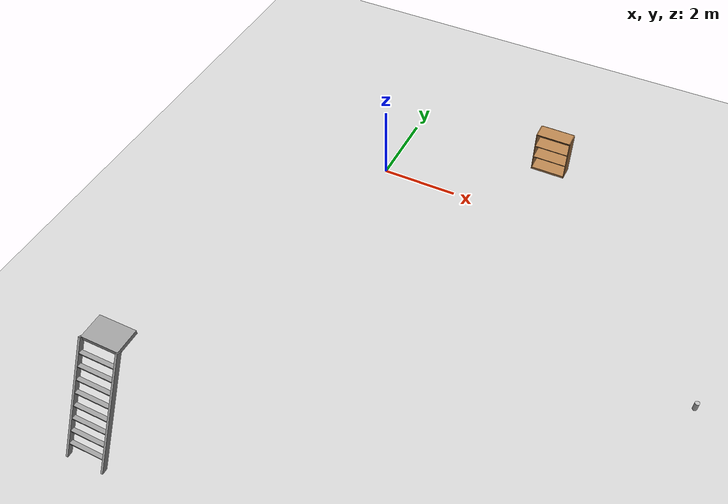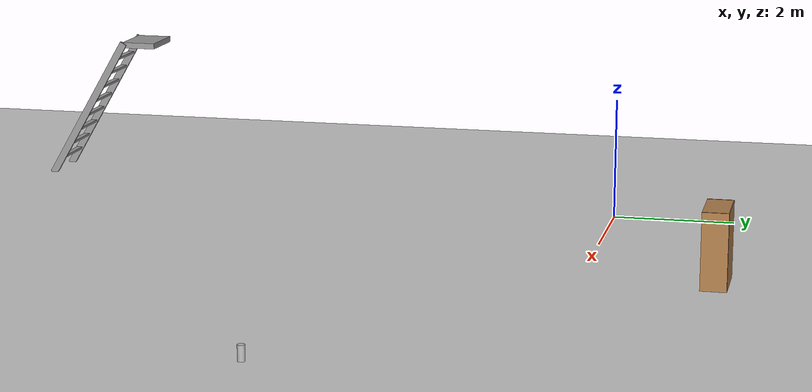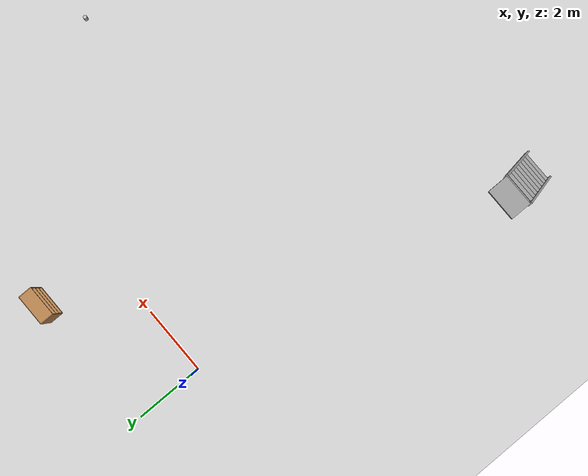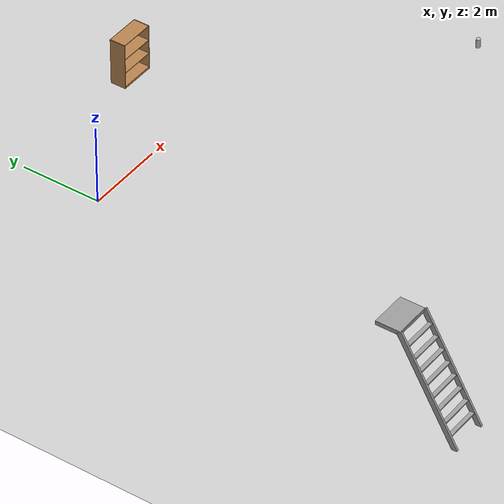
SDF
<sdf version="1.6">
 <world name="default">
  <light name="sun" type="directional">
   <pose>0 0 10 0 -0 0</pose>
   <diffuse>0.8 0.8 0.8 1</diffuse>
   <specular>0.1 0.1 0.1 1</specular>
   <attenuation>
    <range>1000</range>
    <constant>0.9</constant>
    <linear>0.01</linear>
    <quadratic>0.001</quadratic>
   </attenuation>
   <direction>-0.5 0.5 -1</direction>
  </light>
  <model name="ground_plane">
   <static>1</static>
   <link name="link">
    <collision name="collision">
     <geometry><plane><normal>0 0 1</normal><size>100 100</size></plane></geometry>
     <surface><friction><ode><mu>100</mu><mu2>50</mu2></ode></friction></surface>
    </collision>
    <visual name="visual">
     <cast_shadows>0</cast_shadows>
     <geometry><plane><normal>0 0 1</normal><size>100 100</size></plane></geometry>
     <material>
      <script><uri>file://media/materials/scripts/gazebo.material</uri><name>Gazebo/Grey</name></script>
     </material>
    </visual>
   </link>
  </model>
  <gravity>0 0 -9.8</gravity>
  <magnetic_field>6e-06 2.3e-05 -4.2e-05</magnetic_field>
  <atmosphere type="adiabatic"/>
  <physics name="default_physics" default="0" type="ode">
   <max_step_size>0.001</max_step_size>
   <real_time_factor>1</real_time_factor>
   <real_time_update_rate>1000</real_time_update_rate>
  </physics>
  <scene><ambient>0.4 0.4 0.4 1</ambient><background>0.7 0.7 0.7 1</background><shadows>1</shadows></scene>
  <spherical_coordinates>
   <surface_model>EARTH_WGS84</surface_model>
   <latitude_deg>0</latitude_deg>
   <longitude_deg>0</longitude_deg>
   <elevation>0</elevation>
   <heading_deg>0</heading_deg>
  </spherical_coordinates>
  <model name="beer">
   <link name="link">
    <pose>0 0 0.115 0 -0 0</pose>
    <inertial>
     <mass>0.39</mass>
     <inertia><ixx>0.00058</ixx><ixy>0</ixy><ixz>0</ixz><iyy>0.00058</iyy><iyz>0</iyz><izz>0.00019</izz></inertia>
    </inertial>
    <collision name="collision">
     <geometry><cylinder><radius>0.055</radius><length>0.23</length></cylinder></geometry>
    </collision>
    <visual name="visual">
     <geometry><cylinder><radius>0.055</radius><length>0.23</length></cylinder></geometry>
     <material>
      <script>
       <uri>model://beer/materials/scripts</uri>
       <uri>model://beer/materials/textures</uri>
       <name>Beer/Diffuse</name>
      </script>
     </material>
    </visual>
   </link>
   <pose>9.30764 -3.74402 -2e-06 0 0 -2.2e-05</pose>
  </model>
  <model name="bookshelf">
   <static>1</static>
   <link name="link">
    <inertial><mass>1</mass></inertial>
    <collision name="back">
     <pose>0 0.005 0.6 0 -0 0</pose>
     <geometry><box><size>0.9 0.01 1.2</size></box></geometry>
    </collision>
    <visual name="visual1">
     <pose>0 0.005 0.6 0 -0 0</pose>
     <geometry><box><size>0.9 0.01 1.2</size></box></geometry>
     <material>
      <script><uri>file://media/materials/scripts/gazebo.material</uri><name>Gazebo/Wood</name></script>
     </material>
    </visual>
    <collision name="left_side">
     <pose>0.45 -0.195 0.6 0 -0 0</pose>
     <geometry><box><size>0.02 0.4 1.2</size></box></geometry>
    </collision>
    <visual name="visual2">
     <pose>0.45 -0.195 0.6 0 -0 0</pose>
     <geometry><box><size>0.02 0.4 1.2</size></box></geometry>
     <material>
      <script><uri>file://media/materials/scripts/gazebo.material</uri><name>Gazebo/Wood</name></script>
     </material>
    </visual>
    <collision name="right_side">
     <pose>-0.45 -0.195 0.6 0 -0 0</pose>
     <geometry><box><size>0.02 0.4 1.2</size></box></geometry>
    </collision>
    <visual name="visual3">
     <pose>-0.45 -0.195 0.6 0 -0 0</pose>
     <geometry><box><size>0.02 0.4 1.2</size></box></geometry>
     <material>
      <script><uri>file://media/materials/scripts/gazebo.material</uri><name>Gazebo/Wood</name></script>
     </material>
    </visual>
    <collision name="bottom">
     <pose>0 -0.195 0.03 0 -0 0</pose>
     <geometry><box><size>0.88 0.4 0.06</size></box></geometry>
    </collision>
    <visual name="visual4">
     <pose>0 -0.195 0.03 0 -0 0</pose>
     <geometry><box><size>0.88 0.4 0.06</size></box></geometry>
     <material>
      <script><uri>file://media/materials/scripts/gazebo.material</uri><name>Gazebo/Wood</name></script>
     </material>
    </visual>
    <collision name="top">
     <pose>0 -0.195 1.19 0 -0 0</pose>
     <geometry><box><size>0.88 0.4 0.02</size></box></geometry>
    </collision>
    <visual name="visual5">
     <pose>0 -0.195 1.19 0 -0 0</pose>
     <geometry><box><size>0.88 0.4 0.02</size></box></geometry>
     <material>
      <script><uri>file://media/materials/scripts/gazebo.material</uri><name>Gazebo/Wood</name></script>
     </material>
    </visual>
    <collision name="low_shelf">
     <pose>0 -0.195 0.43 0 -0 0</pose>
     <geometry><box><size>0.88 0.4 0.02</size></box></geometry>
    </collision>
    <visual name="visual6">
     <pose>0 -0.195 0.43 0 -0 0</pose>
     <geometry><box><size>0.88 0.4 0.02</size></box></geometry>
     <material>
      <script><uri>file://media/materials/scripts/gazebo.material</uri><name>Gazebo/Wood</name></script>
     </material>
    </visual>
    <collision name="high_shelf">
     <pose>0 -0.195 0.8 0 -0 0</pose>
     <geometry><box><size>0.88 0.4 0.02</size></box></geometry>
    </collision>
    <visual name="visual7">
     <pose>0 -0.195 0.8 0 -0 0</pose>
     <geometry><box><size>0.88 0.4 0.02</size></box></geometry>
     <material>
      <script><uri>file://media/materials/scripts/gazebo.material</uri><name>Gazebo/Wood</name></script>
     </material>
    </visual>
   </link>
   <pose>3.95799 2.23653 0 0 -0 0</pose>
  </model>
  <model name="ladder_60deg_0rails">
   <static>1</static>
   <link name="step0">
    <pose>0 0.15396 0.266667 0 -0 0</pose>
    <inertial>
     <mass>9.75482</mass>
     <inertia>
      <ixx>0.00957124</ixx>
      <iyy>0.65963</iyy>
      <izz>0.666842</izz>
      <ixy>0</ixy>
      <ixz>0</ixz>
      <iyz>0</iyz>
     </inertia>
    </inertial>
    <collision name="collision"><geometry><box><size>0.9 0.1016 0.0381</size></box></geometry></collision>
    <visual name="visual">
     <geometry><box><size>0.9 0.1016 0.0381</size></box></geometry>
     <material>
      <script><uri>file://media/materials/scripts/gazebo.material</uri><name>Gazebo/Grey</name></script>
     </material>
    </visual>
   </link>
   <link name="step1">
    <pose>0 0.30792 0.533333 0 -0 0</pose>
    <inertial>
     <mass>9.75482</mass>
     <inertia>
      <ixx>0.00957124</ixx>
      <iyy>0.65963</iyy>
      <izz>0.666842</izz>
      <ixy>0</ixy>
      <ixz>0</ixz>
      <iyz>0</iyz>
     </inertia>
    </inertial>
    <collision name="collision"><geometry><box><size>0.9 0.1016 0.0381</size></box></geometry></collision>
    <visual name="visual">
     <geometry><box><size>0.9 0.1016 0.0381</size></box></geometry>
     <material>
      <script><uri>file://media/materials/scripts/gazebo.material</uri><name>Gazebo/Grey</name></script>
     </material>
    </visual>
   </link>
   <link name="step2">
    <pose>0 0.46188 0.8 0 -0 0</pose>
    <inertial>
     <mass>9.75482</mass>
     <inertia>
      <ixx>0.00957124</ixx>
      <iyy>0.65963</iyy>
      <izz>0.666842</izz>
      <ixy>0</ixy>
      <ixz>0</ixz>
      <iyz>0</iyz>
     </inertia>
    </inertial>
    <collision name="collision"><geometry><box><size>0.9 0.1016 0.0381</size></box></geometry></collision>
    <visual name="visual">
     <geometry><box><size>0.9 0.1016 0.0381</size></box></geometry>
     <material>
      <script><uri>file://media/materials/scripts/gazebo.material</uri><name>Gazebo/Grey</name></script>
     </material>
    </visual>
   </link>
   <link name="step3">
    <pose>0 0.61584 1.06667 0 -0 0</pose>
    <inertial>
     <mass>9.75482</mass>
     <inertia>
      <ixx>0.00957124</ixx>
      <iyy>0.65963</iyy>
      <izz>0.666842</izz>
      <ixy>0</ixy>
      <ixz>0</ixz>
      <iyz>0</iyz>
     </inertia>
    </inertial>
    <collision name="collision"><geometry><box><size>0.9 0.1016 0.0381</size></box></geometry></collision>
    <visual name="visual">
     <geometry><box><size>0.9 0.1016 0.0381</size></box></geometry>
     <material>
      <script><uri>file://media/materials/scripts/gazebo.material</uri><name>Gazebo/Grey</name></script>
     </material>
    </visual>
   </link>
   <link name="step4">
    <pose>0 0.7698 1.33333 0 -0 0</pose>
    <inertial>
     <mass>9.75482</mass>
     <inertia>
      <ixx>0.00957124</ixx>
      <iyy>0.65963</iyy>
      <izz>0.666842</izz>
      <ixy>0</ixy>
      <ixz>0</ixz>
      <iyz>0</iyz>
     </inertia>
    </inertial>
    <collision name="collision"><geometry><box><size>0.9 0.1016 0.0381</size></box></geometry></collision>
    <visual name="visual">
     <geometry><box><size>0.9 0.1016 0.0381</size></box></geometry>
     <material>
      <script><uri>file://media/materials/scripts/gazebo.material</uri><name>Gazebo/Grey</name></script>
     </material>
    </visual>
   </link>
   <link name="step5">
    <pose>0 0.92376 1.6 0 -0 0</pose>
    <inertial>
     <mass>9.75482</mass>
     <inertia>
      <ixx>0.00957124</ixx>
      <iyy>0.65963</iyy>
      <izz>0.666842</izz>
      <ixy>0</ixy>
      <ixz>0</ixz>
      <iyz>0</iyz>
     </inertia>
    </inertial>
    <collision name="collision"><geometry><box><size>0.9 0.1016 0.0381</size></box></geometry></collision>
    <visual name="visual">
     <geometry><box><size>0.9 0.1016 0.0381</size></box></geometry>
     <material>
      <script><uri>file://media/materials/scripts/gazebo.material</uri><name>Gazebo/Grey</name></script>
     </material>
    </visual>
   </link>
   <link name="step6">
    <pose>0 1.07772 1.86667 0 -0 0</pose>
    <inertial>
     <mass>9.75482</mass>
     <inertia>
      <ixx>0.00957124</ixx>
      <iyy>0.65963</iyy>
      <izz>0.666842</izz>
      <ixy>0</ixy>
      <ixz>0</ixz>
      <iyz>0</iyz>
     </inertia>
    </inertial>
    <collision name="collision"><geometry><box><size>0.9 0.1016 0.0381</size></box></geometry></collision>
    <visual name="visual">
     <geometry><box><size>0.9 0.1016 0.0381</size></box></geometry>
     <material>
      <script><uri>file://media/materials/scripts/gazebo.material</uri><name>Gazebo/Grey</name></script>
     </material>
    </visual>
   </link>
   <link name="step7">
    <pose>0 1.23168 2.13333 0 -0 0</pose>
    <inertial>
     <mass>9.75482</mass>
     <inertia>
      <ixx>0.00957124</ixx>
      <iyy>0.65963</iyy>
      <izz>0.666842</izz>
      <ixy>0</ixy>
      <ixz>0</ixz>
      <iyz>0</iyz>
     </inertia>
    </inertial>
    <collision name="collision"><geometry><box><size>0.9 0.1016 0.0381</size></box></geometry></collision>
    <visual name="visual">
     <geometry><box><size>0.9 0.1016 0.0381</size></box></geometry>
     <material>
      <script><uri>file://media/materials/scripts/gazebo.material</uri><name>Gazebo/Grey</name></script>
     </material>
    </visual>
   </link>
   <link name="landing">
    <pose>0 1.68564 2.4 0 -0 0</pose>
    <inertial>
     <mass>57.6072</mass>
     <inertia><ixx>1.73518</ixx><iyy>3.89545</iyy><izz>5.6167</izz><ixy>0</ixy><ixz>0</ixz><iyz>0</iyz></inertia>
    </inertial>
    <collision name="collision"><geometry><box><size>0.9 0.6 0.1016</size></box></geometry></collision>
    <visual name="visual">
     <geometry><box><size>0.9 0.6 0.1016</size></box></geometry>
     <material>
      <script><uri>file://media/materials/scripts/gazebo.material</uri><name>Gazebo/Grey</name></script>
     </material>
    </visual>
   </link>
   <link name="left_side_wall">
    <pose>-0.45 0.69282 1.2 1.0472 -0 0</pose>
    <collision name="collision"><geometry><box><size>0.0508 2.85128 0.13</size></box></geometry></collision>
    <visual name="visual">
     <geometry><box><size>0.0508 2.85128 0.13</size></box></geometry>
     <material>
      <script><uri>file://media/materials/scripts/gazebo.material</uri><name>Gazebo/Grey</name></script>
     </material>
    </visual>
   </link>
   <link name="right_side_wall">
    <pose>0.45 0.69282 1.2 1.0472 -0 0</pose>
    <collision name="collision"><geometry><box><size>0.0508 2.85128 0.13</size></box></geometry></collision>
    <visual name="visual">
     <geometry><box><size>0.0508 2.85128 0.13</size></box></geometry>
     <material>
      <script><uri>file://media/materials/scripts/gazebo.material</uri><name>Gazebo/Grey</name></script>
     </material>
    </visual>
   </link>
   <pose>-1.71415 -10.5886 0 0 -0 0</pose>
  </model>
 </world>
</sdf>
